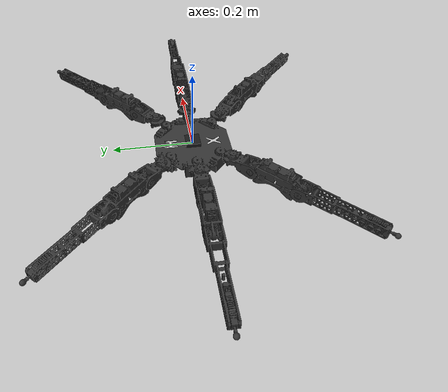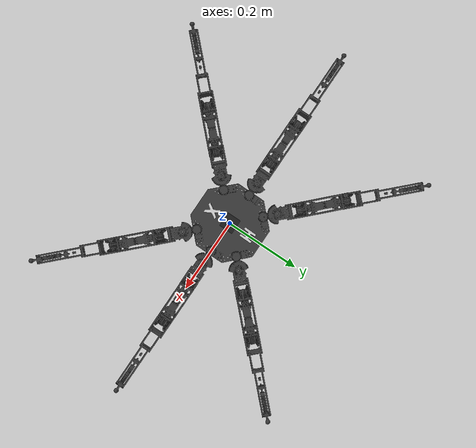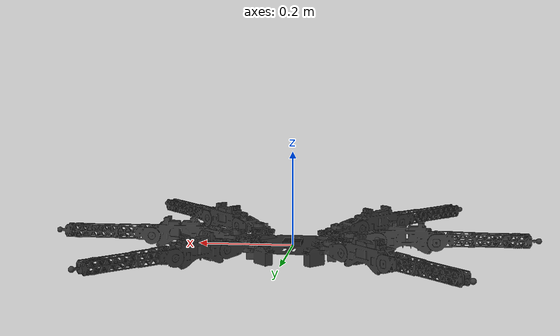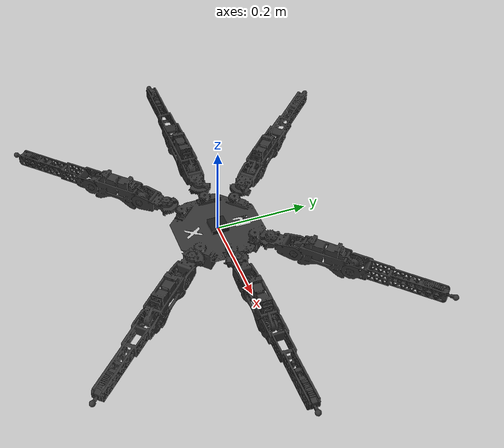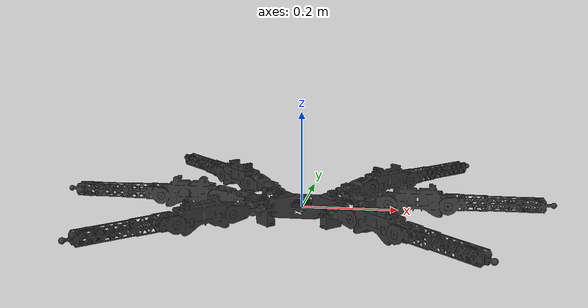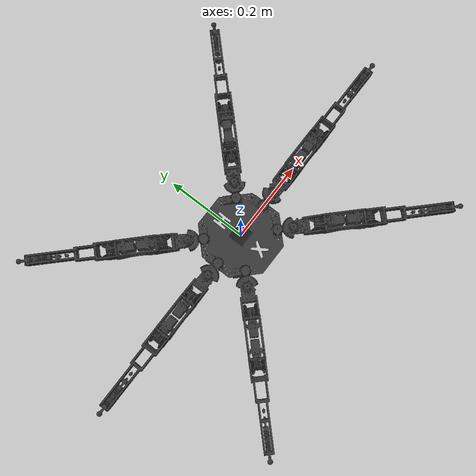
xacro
<?xml version="1.0"?>
<robot name="hexapod" xmlns:xacro="http://ros.org/wiki/xacro">
    <!-- Declare the argument with a default value -->
    <xacro:arg name="use_gazebo" default="true"/>
    <xacro:arg name="version" default="2"/>
    <xacro:property name="use_gazebo" value="$(arg use_gazebo)"/>
    <xacro:property name="version" value="$(arg version)"/>
    <xacro:include filename="$(find hexapod_description)/urdf/hexapod_ee.urdf.xacro" />

    <!-- Pass the argument value to the macro -->
    <xacro:hexapod_ee use_sim="true" prefix="" use_gazebo="$(arg use_gazebo)" version="$(arg version)"/>
</robot>

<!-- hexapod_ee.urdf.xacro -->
<robot name="hexapod" xmlns:xacro="http://ros.org/wiki/xacro">
  <xacro:macro name="hexapod_ee" params="use_sim prefix use_gazebo version">

    <xacro:include filename="$(find hexapod_description)/gazebo/hexapod.gazebo.xacro" />
    <xacro:include filename="$(find hexapod_description)/urdf/hexapod_leg_ee.urdf.xacro" />
    <xacro:include filename="$(find hexapod_description)/urdf/hexapod_gazebo.urdf.xacro" />
    <xacro:include filename="$(find hexapod_description)/urdf/imu.urdf.xacro"/>
    <xacro:include filename="$(find hexapod_moveit_config)/config/hexapod.ros2_control.xacro" />

    <xacro:hexapod_leg_ee prefix="${prefix}" version="${version}"/>
    <xacro:hexapod_gazebo prefix="${prefix}" />

    <xacro:imu_sensor
    prefix="${prefix}"
    parent="${prefix}base_link"
    frame_id="imu"
    xyz_offset="0 0 0.006"
    rpy_offset="0 0 0"
    update_rate="15.0"
    topic_name="imu/data"/>

    <gazebo>
      <plugin filename="gz_ros2_control-system" name="gz_ros2_control::GazeboSimROS2ControlPlugin">
        <parameters>$(find hex_gz)/config/gazebo_controller_manager.yaml</parameters>
      </plugin>
    </gazebo>

    <gazebo reference="imu">
      <sensor name="imu_sensor" type="imu">
        <update_rate>100.0</update_rate>
        <always_on>true</always_on>
        <visualize>true</visualize>
        <topic>imu/data</topic>
        <imu>
          <topic>imu/data</topic>
          <gaussian_noise>0.01</gaussian_noise>
          <bias_mean>0.0</bias_mean>
          <bias_stddev>0.0</bias_stddev>
        </imu>
      </sensor>
    </gazebo>

    <xacro:hexapod_ros2_control name="hexapod" initial_positions_file="$(find hexapod_description)/config/initial_positions.yaml" use_gazebo="${use_gazebo}"/>
  </xacro:macro>
</robot>

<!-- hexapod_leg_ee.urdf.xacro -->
<robot xmlns:xacro="http://www.ros.org/wiki/xacro">
  <xacro:macro name="hexapod_leg_ee" params="prefix version">
    <xacro:if value="${int(version) == 1}">
      <!-- CECHY INERCJI -->
      <xacro:property name="platform_mass" value="0.3" />
      <xacro:property name="up_section_mass" value="0.1" />
      <xacro:property name="mid_section_mass" value="0.1" />
      <xacro:property name="down_section_mass" value="0.1" />
      <xacro:property name="ixx" value="0.001"/>
      <xacro:property name="iyy" value="0.001"/>
      <xacro:property name="izz" value="0.001"/>

      <!-- OGRANICZENIA KĄTOWE JOINTÓW -->
      <xacro:property name="joint1_lower" value="-0.5236"/>
      <xacro:property name="joint1_upper" value="0.5236"/>
      <xacro:property name="joint2_lower" value="-0.261799388"/>
      <xacro:property name="joint2_upper" value="1.308996939"/>
      <xacro:property name="joint3_lower" value="0"/>
      <xacro:property name="joint3_upper" value="1.570796327"/>

      <!-- CECHY POŁOŻENIA STAWÓW LEG 1 -->
      <xacro:property name="joint1_1_xyz" value="-0.063746 0.067285 0.003274"/>
      <xacro:property name="joint1_1_axis" value="0 0 1"/>

      <xacro:property name="joint2_1_xyz" value="-0.018864 0.024671 -0.020002"/>
      <xacro:property name="joint2_1_axis" value="-0.7968540982 -0.6041717854 0"/>

      <xacro:property name="joint3_1_xyz" value="-0.054636 0.071451 0.00505"/>
      <xacro:property name="joint3_1_axis" value="-0.7968540982 -0.6041717854 0"/>

      <xacro:property name="joint4_1_xyz" value="-0.099587 0.130461 -0.000046"/>
      <xacro:property name="joint4_1_axis" value="0 0 0"/>

      <!-- CECHY POŁOŻENIA LINKÓW LEG 1 -->
      <xacro:property name="link2_1_xyz" value="-0.013611 0.016988 -0.000419"/>
      <xacro:property name="link2_1_rpy" value="0 0 0.654498469"/>
      <xacro:property name="link3_1_xyz" value="-0.024936 0.032658 0.000547"/>
      <xacro:property name="link3_1_rpy" value="0 0 0.654498469"/>
      <xacro:property name="link4_1_xyz" value="-0.039176 0.05167 0"/>
      <xacro:property name="link4_1_rpy" value="0 0 0.654498469"/>

      <!-- CECHY POŁOŻENIA STAWÓW LEG 2 -->
      <xacro:property name="joint1_2_xyz" value="-0.005442 0.097816 0.003274"/>
      <xacro:property name="joint1_2_axis" value="0 0 1"/>

      <xacro:property name="joint2_2_xyz" value="0.0 0.031057 -0.020002"/>
      <xacro:property name="joint2_2_axis" value="-1 0 0"/>

      <xacro:property name="joint3_2_xyz" value="0.0 0.089946 0.00505"/>
      <xacro:property name="joint3_2_axis" value="-1 0 0"/>

      <xacro:property name="joint4_2_xyz" value="0.000147 0.164223 -0.000046"/>
      <xacro:property name="joint4_2_axis" value="0 0 0"/>

      <!-- CECHY POŁOŻENIA LINKÓW LEG 2 -->
      <xacro:property name="link2_2_xyz" value="-0.000493 0.021762 -0.000419"/>
      <xacro:property name="link2_2_rpy" value="0 0 0"/>
      <xacro:property name="link3_2_xyz" value="0.0 0.041 0.000546"/>
      <xacro:property name="link3_2_rpy" value="0 0 0"/>
      <xacro:property name="link4_2_xyz" value="0.000265 0.064842 0.0"/>
      <xacro:property name="link4_2_rpy" value="0 0 0"/>

      <!-- CECHY POŁOŻENIA STAWÓW LEG 3 -->
      <xacro:property name="joint1_3_xyz" value="0.055103 0.073938 0.003274"/>
      <xacro:property name="joint1_3_axis" value="0 0 1"/>

      <xacro:property name="joint2_3_xyz" value="0.018864 0.024671 -0.020002"/>
      <xacro:property name="joint2_3_axis" value="-0.794374 0.6074290528 0"/>

      <xacro:property name="joint3_3_xyz" value="0.054636 0.071451 0.00505"/>
      <xacro:property name="joint3_3_axis" value="-0.794374 0.6074290528 0"/>

      <xacro:property name="joint4_3_xyz" value="0.099252 0.130694 -0.000046"/>
      <xacro:property name="joint4_3_axis" value="0 0 0"/>

      <!-- CECHY POŁOŻENIA LINKÓW LEG 3 -->
      <xacro:property name="link2_3_xyz" value="0.012827 0.017587 -0.000419"/>
      <xacro:property name="link2_3_rpy" value="0 0 -0.654498469"/>
      <xacro:property name="link3_3_xyz" value="0.024936 0.032658 0.000547"/>
      <xacro:property name="link3_3_rpy" value="0 0 -0.654498469"/>
      <xacro:property name="link4_3_xyz" value="0.039176 0.05167 0"/>
      <xacro:property name="link4_3_rpy" value="0 0 -0.654498469"/>

      <!-- CECHY POŁOŻENIA STAWÓW LEG 4 -->
      <xacro:property name="joint1_4_xyz" value="0.055103 -0.073938 0.003274"/>
      <xacro:property name="joint1_4_axis" value="0 0 1"/>

      <xacro:property name="joint2_4_xyz" value="0.018864 -0.024671 -0.020002"/>
      <xacro:property name="joint2_4_axis" value="0.6074290528 0.794374 0"/>

      <xacro:property name="joint3_4_xyz" value="0.054636 -0.071451 0.00505"/>
      <xacro:property name="joint3_4_axis" value="0.794374 0.6074290528 0"/>

      <xacro:property name="joint4_4_xyz" value="0.099758 -0.130448 -0.000046"/>
      <xacro:property name="joint4_4_axis" value="0 0 0"/>

      <!-- CECHY POŁOŻENIA LINKÓW LEG 4 -->
      <xacro:property name="link2_4_xyz" value="0.013611 -0.016988 -0.000419"/>
      <xacro:property name="link2_4_rpy" value="0 0 3.796091123"/>
      <xacro:property name="link3_4_xyz" value="0.024936 -0.032658 0.000547"/>
      <xacro:property name="link3_4_rpy" value="0 0 3.796091123"/>
      <xacro:property name="link4_4_xyz" value="0.039176 -0.05167 0"/>
      <xacro:property name="link4_4_rpy" value="0 0 3.796091123"/>

      <!-- CECHY POŁOŻENIA STAWÓW LEG 5 -->
      <xacro:property name="joint1_5_xyz" value="-0.005442 -0.097816 0.003274"/>
      <xacro:property name="joint1_5_axis" value="0 0 1"/>

      <xacro:property name="joint2_5_xyz" value="0.0 -0.031057 -0.020002"/>
      <xacro:property name="joint2_5_axis" value="1 0 0"/>

      <xacro:property name="joint3_5_xyz" value="0.0 -0.089946 0.00505"/>
      <xacro:property name="joint3_5_axis" value="1 0 0"/>

      <xacro:property name="joint4_5_xyz" value="-0.000051 -0.164207 -0.000046"/>
      <xacro:property name="joint4_5_axis" value="0 0 0"/>

      <!-- CECHY POŁOŻENIA LINKÓW LEG 5 -->
      <xacro:property name="link2_5_xyz" value="0.000493 -0.021762 -0.000419"/>
      <xacro:property name="link2_5_rpy" value="0 0 3.141592654"/>
      <xacro:property name="link3_5_xyz" value="0.0 -0.041 0.000546"/>
      <xacro:property name="link3_5_rpy" value="0 0 3.141592654"/>
      <xacro:property name="link4_5_xyz" value="-0.000265 -0.064842 0.0"/>
      <xacro:property name="link4_5_rpy" value="0 0 3.141592654"/>

      <!-- CECHY POŁOŻENIA STAWÓW LEG 6 -->
      <xacro:property name="joint1_6_xyz" value="-0.063746 -0.067285 0.003274"/>
      <xacro:property name="joint1_6_axis" value="0 0 1"/>

      <xacro:property name="joint2_6_xyz" value="-0.018864 -0.024671 -0.020002"/>
      <xacro:property name="joint2_6_axis" value="0.794374 -0.6074290528 0"/>

      <xacro:property name="joint3_6_xyz" value="-0.054636 -0.071451 0.00505"/>
      <xacro:property name="joint3_6_axis" value="0.794374 -0.6074290528 0"/>

      <xacro:property name="joint4_6_xyz" value="-0.099223 -0.130739 -0.000046"/>
      <xacro:property name="joint4_6_axis" value="0 0 0"/>

      <!-- CECHY POŁOŻENIA LINKÓW LEG 6 -->
      <xacro:property name="link2_6_xyz" value="-0.012827 -0.017588 -0.000419"/>
      <xacro:property name="link2_6_rpy" value="0 0 2.487094184"/>
      <xacro:property name="link3_6_xyz" value="-0.024936 -0.032658 0.000547"/>
      <xacro:property name="link3_6_rpy" value="0 0 2.487094184"/>
      <xacro:property name="link4_6_xyz" value="-0.039176 -0.05167 0"/>
      <xacro:property name="link4_6_rpy" value="0 0 2.487094184"/>

    </xacro:if>

    <!-- DLA NOWEJ WERSJI HEXAPODA ZMIENIĆ PONIŻSZE PARAMETRY -->
    <xacro:if value="${int(version) == 2}">
      <!-- CECHY INERCJI -->
      <xacro:property name="platform_mass" value="0.4" />
      <xacro:property name="up_section_mass" value="0.12" />
      <xacro:property name="mid_section_mass" value="0.12" />
      <xacro:property name="down_section_mass" value="0.12" />
      <xacro:property name="ixx" value="0.002"/>
      <xacro:property name="iyy" value="0.002"/>
      <xacro:property name="izz" value="0.002"/>

      <!-- OGRANICZENIA KĄTOWE JOINTÓW -->
      <xacro:property name="joint1_lower" value="-0.785398163"/>
      <xacro:property name="joint1_upper" value="0.785398163"/>
      <xacro:property name="joint2_lower" value="-1.047197551"/>
      <xacro:property name="joint2_upper" value="1.047197551"/>
      <xacro:property name="joint3_lower" value="-0.523598776"/>
      <xacro:property name="joint3_upper" value="1.570796327"/>

      <!-- CECHY POŁOŻENIA STAWÓW LEG 1 -->
      <xacro:property name="joint1_1_xyz" value="0.086185	0.0860902	0.0170504"/>
      <xacro:property name="joint1_1_axis" value="0	0	1"/>

      <xacro:property name="joint2_1_xyz" value="0.041059	0.0410588	0.0002496"/>
      <xacro:property name="joint2_1_axis" value="-0.707106781	0.707106781	0"/>

      <xacro:property name="joint3_1_xyz" value="0.085418	0.085419	0"/>
      <xacro:property name="joint3_1_axis" value="-0.707106781	0.707106781	0"/>

      <xacro:property name="joint4_1_xyz" value="0.147786	0.147786	0.0048551"/>
      <xacro:property name="joint4_1_axis" value="0	0	0"/>

      <!-- CECHY POŁOŻENIA LINKÓW LEG 1 -->
      <xacro:property name="link2_1_xyz" value="0.003017	0.0026184	-0.0000519"/>
      <xacro:property name="link2_1_rpy" value="0	0	0.7853981634"/>
      <xacro:property name="link3_1_xyz" value="0.039867	0.039421	0.00014"/>
      <xacro:property name="link3_1_rpy" value="0	0	0.7853981634"/>
      <xacro:property name="link4_1_xyz" value="0.082477	0.082555	0.0045585"/>
      <xacro:property name="link4_1_rpy" value="0	0	0.7853981634"/>
      <xacro:property name="link5_1_xyz" value="0	0	0"/>
      <xacro:property name="link5_1_rpy" value="0	0	0"/>

      <!-- CECHY POŁOŻENIA STAWÓW LEG 2 -->
      <xacro:property name="joint1_2_xyz" value="0.121845	0	0.0170504"/>
      <xacro:property name="joint1_2_axis" value="0	0	1"/>

      <xacro:property name="joint2_2_xyz" value="0.058105	-0.000094711	0.0002496"/>
      <xacro:property name="joint2_2_axis" value="0	1	0"/>

      <xacro:property name="joint3_2_xyz" value="0.120802	0.000000002	0"/>
      <xacro:property name="joint3_2_axis" value="0	1	0"/>

      <xacro:property name="joint4_2_xyz" value="0.209002	-0.000000003	0.0048551"/>
      <xacro:property name="joint4_2_axis" value="0	0	0"/>

      <!-- CECHY POŁOŻENIA LINKÓW LEG 2 -->
      <xacro:property name="link2_2_xyz" value="0.003944	-0.000340488	-0.0000519"/>
      <xacro:property name="link2_2_rpy" value="0	0	0"/>
      <xacro:property name="link3_2_xyz" value="0.055988	-0.000035124	0.0001789"/>
      <xacro:property name="link3_2_rpy" value="0	0	0"/>
      <xacro:property name="link4_2_xyz" value="0.116837	0.000195559	0.0045585"/>
      <xacro:property name="link4_2_rpy" value="0	0	0"/>
      <xacro:property name="link5_2_xyz" value="0	0	0"/>
      <xacro:property name="link5_2_rpy" value="0	0	0"/>

      <!-- CECHY POŁOŻENIA STAWÓW LEG 3 -->
      <xacro:property name="joint1_3_xyz" value="0.0861847	-0.0860902	0.0170504"/>
      <xacro:property name="joint1_3_axis" value="0	0	1"/>

      <xacro:property name="joint2_3_xyz" value="0.0410583	-0.0412488	0.0002496"/>
      <xacro:property name="joint2_3_axis" value="0.707106781	0.707106781	0"/>

      <xacro:property name="joint3_3_xyz" value="0.08542	-0.085418	0"/>
      <xacro:property name="joint3_3_axis" value="0.707106781	0.707106781	0"/>

      <xacro:property name="joint4_3_xyz" value="0.147785	-0.147785	0.0048551"/>
      <xacro:property name="joint4_3_axis" value="0	0	0"/>

      <!-- CECHY POŁOŻENIA LINKÓW LEG 3 -->
      <xacro:property name="link2_3_xyz" value="0.0029399	-0.002591	-0.0000519"/>
      <xacro:property name="link2_3_rpy" value="0	0	5.497787144"/>
      <xacro:property name="link3_3_xyz" value="0.03928	-0.039511	0.00014"/>
      <xacro:property name="link3_3_rpy" value="0	0	5.497787144"/>
      <xacro:property name="link4_3_xyz" value="0.082476	-0.082624	0.0045585"/>
      <xacro:property name="link4_3_rpy" value="0	0	5.497787144"/>
      <xacro:property name="link5_3_xyz" value="0	0	0"/>
      <xacro:property name="link5_3_rpy" value="0	0	0"/>

      <!-- CECHY POŁOŻENIA STAWÓW LEG 4 -->
      <xacro:property name="joint1_4_xyz" value="-0.0861847	-0.0860902	0.0170504"/>
      <xacro:property name="joint1_4_axis" value="0	0	1"/>

      <xacro:property name="joint2_4_xyz" value="-0.0410583	-0.0412488	0.0002496"/>
      <xacro:property name="joint2_4_axis" value="0.707106781	-0.707106781	0"/>

      <xacro:property name="joint3_4_xyz" value="-0.08542	-0.085418	0"/>
      <xacro:property name="joint3_4_axis" value="0.707106781	-0.707106781	0"/>

      <xacro:property name="joint4_4_xyz" value="-0.147785	-0.147785	0.0048551"/>
      <xacro:property name="joint4_4_axis" value="0	0	0"/>

      <!-- CECHY POŁOŻENIA LINKÓW LEG 4 -->
      <xacro:property name="link2_4_xyz" value="-0.0029399	-0.002591	-0.0000519"/>
      <xacro:property name="link2_4_rpy" value="0	0	3.926990817"/>
      <xacro:property name="link3_4_xyz" value="-0.03928	-0.039511	0.00014"/>
      <xacro:property name="link3_4_rpy" value="0	0	3.926990817"/>
      <xacro:property name="link4_4_xyz" value="-0.082476	-0.082624	0.0045585"/>
      <xacro:property name="link4_4_rpy" value="0	0	3.926990817"/>
      <xacro:property name="link5_4_xyz" value="0	0	0"/>
      <xacro:property name="link5_4_rpy" value="0	0	0"/>

      <!-- CECHY POŁOŻENIA STAWÓW LEG 5 -->
      <xacro:property name="joint1_5_xyz" value="-0.121845	0	0.0170504"/>
      <xacro:property name="joint1_5_axis" value="0	0	1"/>

      <xacro:property name="joint2_5_xyz" value="-0.058105	-0.000094711	0.0002496"/>
      <xacro:property name="joint2_5_axis" value="0	-1	0"/>

      <xacro:property name="joint3_5_xyz" value="-0.120802	0.000000002	0"/>
      <xacro:property name="joint3_5_axis" value="0	-1	0"/>

      <xacro:property name="joint4_5_xyz" value="-0.209002	-0.000000003	0.0048551"/>
      <xacro:property name="joint4_5_axis" value="0	0	0"/>

      <!-- CECHY POŁOŻENIA LINKÓW LEG 5 -->
      <xacro:property name="link2_5_xyz" value="-0.003953	-0.000340488	-0.0000519"/>
      <xacro:property name="link2_5_rpy" value="0	0	3.141592654"/>
      <xacro:property name="link3_5_xyz" value="-0.055988	-0.000035124	0.0001789"/>
      <xacro:property name="link3_5_rpy" value="0	0	3.141592654"/>
      <xacro:property name="link4_5_xyz" value="-0.116837	0.000195559	0.0045585"/>
      <xacro:property name="link4_5_rpy" value="0	0	3.141592654"/>
      <xacro:property name="link5_5_xyz" value="0	0	0"/>
      <xacro:property name="link5_5_rpy" value="0	0	0"/>

      <!-- CECHY POŁOŻENIA STAWÓW LEG 6 -->
      <xacro:property name="joint1_6_xyz" value="-0.0859957	0.0860903	0.0170505"/>
      <xacro:property name="joint1_6_axis" value="0	0	1"/>

      <xacro:property name="joint2_6_xyz" value="-0.0412483	0.0410587	0.0002494"/>
      <xacro:property name="joint2_6_axis" value="-0.707106781	-0.707106781	0"/>

      <xacro:property name="joint3_6_xyz" value="-0.08542	0.085419	0.0000001"/>
      <xacro:property name="joint3_6_axis" value="-0.707106781	-0.707106781	0"/>

      <xacro:property name="joint4_6_xyz" value="-0.147786	0.147785	0.0048551"/>
      <xacro:property name="joint4_6_axis" value="0	0	0"/>

      <!-- CECHY POŁOŻENIA LINKÓW LEG 6 -->
      <xacro:property name="link2_6_xyz" value="-0.0029399	0.002591	-0.0000519"/>
      <xacro:property name="link2_6_rpy" value="0	0	2.35619449"/>
      <xacro:property name="link3_6_xyz" value="-0.03928	0.039511	0.00014"/>
      <xacro:property name="link3_6_rpy" value="0	0	2.364921136"/>
      <xacro:property name="link4_6_xyz" value="-0.082476	0.082624	0.0045585"/>
      <xacro:property name="link4_6_rpy" value="0	0	2.35619449"/>
      <xacro:property name="link5_6_xyz" value="0	0	0"/>
      <xacro:property name="link5_6_rpy" value="0	0	0"/>

    </xacro:if>

    <xacro:property
        name="meshes_file_direction"
        value="package://hexapod_description/meshes/Version${version}"/>

    <!-- Include macro modeli kolizyjnych z prostych kształtów geometrycznych -->
     <xacro:if value="${int(version) == 1}">
      <xacro:include filename="$(find hexapod_description)/collision/platform_hitbox.xacro"/>
      <xacro:include filename="$(find hexapod_description)/collision/up_section_hitbox.xacro"/>
      <xacro:include filename="$(find hexapod_description)/collision/mid_section_hitbox.xacro"/>
      <xacro:include filename="$(find hexapod_description)/collision/down_section_hitbox.xacro"/>
    </xacro:if>

    <!-- NA RAZIE BRAK PROSTYCH MODELI KOLIZJI -->
    <xacro:if value="${int(version) == 2}">
    </xacro:if>

    <!-- Macro platformy -->
      <xacro:macro name="platform_base" params="prefix">
        <link name="${prefix}base_link">
          <visual>
            <origin xyz="0 0 0" rpy="0 0 0"/>
            <geometry>
              <mesh filename="${meshes_file_direction}/platform.stl" scale="1 1 1"/>
            </geometry>
            <material name="gray">
              <color rgba="0.2 0.2 0.2 1"/>
            </material>
          </visual>

          <!-- MODEL KOLIZYJNY -->
          <xacro:if value="${int(version) == 1}">
            <xacro:platform_collision prefix="${prefix}" />
          </xacro:if>
           <xacro:if value="${int(version) == 2}">
            <collision>
                <origin xyz="0 0 0" rpy="0 0 0"/>
                <geometry>
                  <mesh filename="${meshes_file_direction}/platform.stl" scale="1 1 1"/>
                </geometry>
            </collision>
          </xacro:if>

          <inertial>
            <origin xyz="0 0 0" rpy="0 0 0"/>
            <mass value="${platform_mass}"/>
            <inertia
              ixx="${ixx}" ixy="0.0" ixz="0.0"
              iyy="${iyy}" iyz="0.0"
              izz="${izz}"/>
          </inertial>
        </link>
      </xacro:macro>

    <!-- Macro: Joint -->
    <xacro:macro name="leg_joint" params="prefix joint_name parent_link child_link xyz axis lower upper">
      <joint name="${joint_name}" type="revolute">
        <parent link="${parent_link}"/>
        <child link="${child_link}"/>
        <origin xyz="${xyz}" rpy="0 0 0"/>
        <axis xyz="${axis}"/>
        <limit effort="5.0" velocity="1.0" lower="${lower}" upper="${upper}"/>
        <dynamics damping="0.1"/>
      </joint>
    </xacro:macro>

    <!-- Macro: UP_SECTION -->
    <xacro:macro name="upper_leg" params="prefix index xyz rpy">
      <link name="${prefix}link2_${index}">
        <visual>
          <origin xyz="${xyz}" rpy="${rpy}"/>
          <geometry>
            <mesh filename="${meshes_file_direction}/leg_up.stl" scale="1.0 1.0 1.0"/>
          </geometry>
          <material name="grey">
            <color rgba="0.2 0.2 0.2 1"/>
          </material>
        </visual>

        <!-- MODEL KOLIZYJNY -->
          <xacro:if value="${int(version) == 1}">
            <xacro:upper_leg_collision prefix="${prefix}" position="${xyz}" rotation="${rpy}"/>
          </xacro:if>
           <xacro:if value="${int(version) == 2}">
            <collision>
                <origin xyz="${xyz}" rpy="${rpy}"/>
                <geometry>
                  <mesh filename="${meshes_file_direction}/leg_up.stl" scale="1 1 1"/>
                </geometry>
            </collision>
          </xacro:if>

        <inertial>
          <origin xyz="${xyz}" rpy="0.0 0.0 0.0"/>
          <mass value="${up_section_mass}"/>
          <inertia ixx="${ixx}" ixy="0.0" ixz="0.0" iyy="${iyy}" iyz="0.0" izz="${izz}"/>
        </inertial>
      </link>
    </xacro:macro>

    <!-- Macro: MID_SECTION -->
    <xacro:macro name="mid_leg" params="prefix index xyz rpy">
      <link name="${prefix}link3_${index}">
        <visual>
          <origin xyz="${xyz}" rpy="${rpy}"/>
          <geometry>
            <mesh filename="${meshes_file_direction}/leg_mid.stl" scale="1.0 1.0 1.0"/>
          </geometry>
          <material name="grey">
            <color rgba="0.2 0.2 0.2 1"/>
          </material>
        </visual>
          <xacro:if value="${int(version) == 1}">
            <xacro:mid_leg_collision prefix="${prefix}" position="${xyz}" rotation="${rpy}"/>
          </xacro:if>
           <xacro:if value="${int(version) == 2}">
            <collision>
                <origin xyz="${xyz}" rpy="${rpy}"/>
                <geometry>
                  <mesh filename="${meshes_file_direction}/leg_mid.stl" scale="1 1 1"/>
                </geometry>
            </collision>
          </xacro:if>

        <inertial>
          <origin xyz="${xyz}" rpy="${rpy}"/>
          <mass value="${mid_section_mass}"/>
          <inertia ixx="${ixx}" ixy="0.0" ixz="0.0" iyy="${iyy}" iyz="0.0" izz="${izz}"/>
        </inertial>
      </link>
    </xacro:macro>

    <!-- Macro: DOWN_SECTION -->
    <xacro:macro name="lower_leg" params="prefix index xyz rpy">
      <link name="${prefix}link4_${index}">
        <visual>
          <origin xyz="${xyz}" rpy="${rpy}"/>
          <geometry>
            <mesh filename="${meshes_file_direction}/leg_down.stl" scale="1.0 1.0 1.0"/>
          </geometry>
          <material name="grey">
            <color rgba="0.2 0.2 0.2 1"/>
          </material>
        </visual>

          <xacro:if value="${int(version) == 1}">
            <xacro:lower_leg_collision prefix="${prefix}" position="${xyz}" rotation="${rpy}"/>
          </xacro:if>
           <xacro:if value="${int(version) == 2}">
            <collision>
                <origin xyz="${xyz}" rpy="${rpy}"/>
                <geometry>
                  <mesh filename="${meshes_file_direction}/leg_down.stl" scale="1 1 1"/>
                </geometry>
            </collision>
          </xacro:if>

        <inertial>
          <origin xyz="${xyz}" rpy="${rpy}"/>
          <mass value="${down_section_mass}"/>
          <inertia ixx="${ixx}" ixy="0.0" ixz="0.0" iyy="${iyy}" iyz="0.0" izz="${izz}"/>
        </inertial>
      </link>
    </xacro:macro>

  <!-- Macro: Effector Joint -->
  <xacro:macro name="end_effector_joint" params="prefix index xyz rpy">
    <joint name="${prefix}joint4_${index}" type="fixed">
      <parent link="${prefix}link4_${index}"/>
      <child link="${prefix}link5_${index}"/>
      <origin xyz="${xyz}" rpy="${rpy}"/>
    </joint>
  </xacro:macro>

  <!-- Macro: Effector -->
  <xacro:macro name="end_effector_link" params="prefix index">
    <link name="${prefix}link5_${index}"/>
  </xacro:macro>

  <xacro:macro name="hexapod" params="prefix version">
      <!-- Platform -->
    <xacro:platform_base prefix="${prefix}" />

    <!-- LEG 1 - używa zmiennych zamiast wartości na twardo -->
    <xacro:leg_joint
      prefix="${prefix}"
      joint_name="${prefix}joint1_1"
      parent_link="${prefix}base_link"
      child_link="${prefix}link2_1"
      xyz="${joint1_1_xyz}"
      axis="${joint1_1_axis}"
      lower="${joint1_lower}"
      upper="${joint1_upper}" />
    <xacro:upper_leg prefix="${prefix}" index="1" xyz="${link2_1_xyz}" rpy="${link2_1_rpy}" />

    <xacro:leg_joint
      prefix="${prefix}"
      joint_name="${prefix}joint2_1"
      parent_link="${prefix}link2_1"
      child_link="${prefix}link3_1"
      xyz="${joint2_1_xyz}"
      axis="${joint2_1_axis}"
      lower="${joint2_lower}"
      upper="${joint2_upper}" />
    <xacro:mid_leg prefix="${prefix}" index="1" xyz="${link3_1_xyz}" rpy="${link3_1_rpy}" />

    <xacro:leg_joint
      prefix="${prefix}"
      joint_name="${prefix}joint3_1"
      parent_link="${prefix}link3_1"
      child_link="${prefix}link4_1"
      xyz="${joint3_1_xyz}"
      axis="${joint3_1_axis}"
      lower="${joint3_lower}"
      upper="${joint3_upper}" />
    <xacro:lower_leg prefix="${prefix}" index="1" xyz="${link4_1_xyz}" rpy="${link4_1_rpy}" />

    <xacro:end_effector_joint prefix="${prefix}" index="1" xyz="${joint4_1_xyz}" rpy="${joint4_1_axis}"/>
    <xacro:end_effector_link prefix="${prefix}" index="1"/>

    <!-- LEG 2 - używa zmiennych zamiast wartości na twardo -->
    <xacro:leg_joint
      prefix="${prefix}"
      joint_name="${prefix}joint1_2"
      parent_link="${prefix}base_link"
      child_link="${prefix}link2_2"
      xyz="${joint1_2_xyz}"
      axis="${joint1_2_axis}"
      lower="${joint1_lower}"
      upper="${joint1_upper}"/>
    <xacro:upper_leg prefix="${prefix}" index="2" xyz="${link2_2_xyz}" rpy="${link2_2_rpy}"/>

    <xacro:leg_joint
      prefix="${prefix}"
      joint_name="${prefix}joint2_2"
      parent_link="${prefix}link2_2"
      child_link="${prefix}link3_2"
      xyz="${joint2_2_xyz}"
      axis="${joint2_2_axis}"
      lower="${joint2_lower}"
      upper="${joint2_upper}"/>
    <xacro:mid_leg prefix="${prefix}" index="2" xyz="${link3_2_xyz}" rpy="${link3_2_rpy}"/>

    <xacro:leg_joint
      prefix="${prefix}"
      joint_name="${prefix}joint3_2"
      parent_link="${prefix}link3_2"
      child_link="${prefix}link4_2"
      xyz="${joint3_2_xyz}"
      axis="${joint3_2_axis}"
      lower="${joint3_lower}"
      upper="${joint3_upper}"/>
    <xacro:lower_leg prefix="${prefix}" index="2" xyz="${link4_2_xyz}" rpy="${link4_2_rpy}"/>

    <xacro:end_effector_joint prefix="${prefix}" index="2" xyz="${joint4_2_xyz}" rpy="${joint4_2_axis}"/>
    <xacro:end_effector_link prefix="${prefix}" index="2"/>

    <!-- LEG 3 - używa zmiennych zamiast wartości na twardo -->
    <xacro:leg_joint
      prefix="${prefix}"
      joint_name="${prefix}joint1_3"
      parent_link="${prefix}base_link"
      child_link="${prefix}link2_3"
      xyz="${joint1_3_xyz}"
      axis="${joint1_3_axis}"
      lower="${joint1_lower}"
      upper="${joint1_upper}"/>
    <xacro:upper_leg prefix="${prefix}" index="3" xyz="${link2_3_xyz}" rpy="${link2_3_rpy}"/>

    <xacro:leg_joint
      prefix="${prefix}"
      joint_name="${prefix}joint2_3"
      parent_link="${prefix}link2_3"
      child_link="${prefix}link3_3"
      xyz="${joint2_3_xyz}"
      axis="${joint2_3_axis}"
      lower="${joint2_lower}"
      upper="${joint2_upper}"/>
    <xacro:mid_leg prefix="${prefix}" index="3" xyz="${link3_3_xyz}" rpy="${link3_3_rpy}"/>

    <xacro:leg_joint
      prefix="${prefix}"
      joint_name="${prefix}joint3_3"
      parent_link="${prefix}link3_3"
      child_link="${prefix}link4_3"
      xyz="${joint3_3_xyz}"
      axis="${joint3_3_axis}"
      lower="${joint3_lower}"
      upper="${joint3_upper}"/>
    <xacro:lower_leg prefix="${prefix}" index="3" xyz="${link4_3_xyz}" rpy="${link4_3_rpy}"/>

    <xacro:end_effector_joint prefix="${prefix}" index="3" xyz="${joint4_3_xyz}" rpy="${joint4_3_axis}"/>
    <xacro:end_effector_link prefix="${prefix}" index="3"/>

    <!-- LEG 4 - używa zmiennych zamiast wartości na twardo -->
    <xacro:leg_joint
      prefix="${prefix}"
      joint_name="${prefix}joint1_4"
      parent_link="${prefix}base_link"
      child_link="${prefix}link2_4"
      xyz="${joint1_4_xyz}"
      axis="${joint1_4_axis}"
      lower="${joint1_lower}"
      upper="${joint1_upper}"/>
    <xacro:upper_leg prefix="${prefix}" index="4" xyz="${link2_4_xyz}" rpy="${link2_4_rpy}"/>

    <xacro:leg_joint
      prefix="${prefix}"
      joint_name="${prefix}joint2_4"
      parent_link="${prefix}link2_4"
      child_link="${prefix}link3_4"
      xyz="${joint2_4_xyz}"
      axis="${joint2_4_axis}"
      lower="${joint2_lower}"
      upper="${joint2_upper}"/>
    <xacro:mid_leg prefix="${prefix}" index="4" xyz="${link3_4_xyz}" rpy="${link3_4_rpy}"/>

    <xacro:leg_joint
      prefix="${prefix}"
      joint_name="${prefix}joint3_4"
      parent_link="${prefix}link3_4"
      child_link="${prefix}link4_4"
      xyz="${joint3_4_xyz}"
      axis="${joint3_4_axis}"
      lower="${joint3_lower}"
      upper="${joint3_upper}"/>
    <xacro:lower_leg prefix="${prefix}" index="4" xyz="${link4_4_xyz}" rpy="${link4_4_rpy}"/>

    <xacro:end_effector_joint prefix="${prefix}" index="4" xyz="${joint4_4_xyz}" rpy="${joint4_4_axis}"/>
    <xacro:end_effector_link prefix="${prefix}" index="4"/>

    <!-- LEG 5 - używa zmiennych zamiast wartości na twardo -->
    <xacro:leg_joint
      prefix="${prefix}"
      joint_name="${prefix}joint1_5"
      parent_link="${prefix}base_link"
      child_link="${prefix}link2_5"
      xyz="${joint1_5_xyz}"
      axis="${joint1_5_axis}"
      lower="${joint1_lower}"
      upper="${joint1_upper}"/>
    <xacro:upper_leg prefix="${prefix}" index="5" xyz="${link2_5_xyz}" rpy="${link2_5_rpy}"/>

    <xacro:leg_joint
      prefix="${prefix}"
      joint_name="${prefix}joint2_5"
      parent_link="${prefix}link2_5"
      child_link="${prefix}link3_5"
      xyz="${joint2_5_xyz}"
      axis="${joint2_5_axis}"
      lower="${joint2_lower}"
      upper="${joint2_upper}"/>
    <xacro:mid_leg prefix="${prefix}" index="5" xyz="${link3_5_xyz}" rpy="${link3_5_rpy}"/>

    <xacro:leg_joint
      prefix="${prefix}"
      joint_name="${prefix}joint3_5"
      parent_link="${prefix}link3_5"
      child_link="${prefix}link4_5"
      xyz="${joint3_5_xyz}"
      axis="${joint3_5_axis}"
      lower="${joint3_lower}"
      upper="${joint3_upper}"/>
    <xacro:lower_leg prefix="${prefix}" index="5" xyz="${link4_5_xyz}" rpy="${link4_5_rpy}"/>

    <xacro:end_effector_joint prefix="${prefix}" index="5" xyz="${joint4_5_xyz}" rpy="${joint4_5_axis}"/>
    <xacro:end_effector_link prefix="${prefix}" index="5"/>

    <!-- LEG 6 - używa zmiennych zamiast wartości na twardo -->
    <xacro:leg_joint
      prefix="${prefix}"
      joint_name="${prefix}joint1_6"
      parent_link="${prefix}base_link"
      child_link="${prefix}link2_6"
      xyz="${joint1_6_xyz}"
      axis="${joint1_6_axis}"
      lower="${joint1_lower}"
      upper="${joint1_upper}"/>
    <xacro:upper_leg prefix="${prefix}" index="6" xyz="${link2_6_xyz}" rpy="${link2_6_rpy}"/>

    <xacro:leg_joint
      prefix="${prefix}"
      joint_name="${prefix}joint2_6"
      parent_link="${prefix}link2_6"
      child_link="${prefix}link3_6"
      xyz="${joint2_6_xyz}"
      axis="${joint2_6_axis}"
      lower="${joint2_lower}"
      upper="${joint2_upper}"/>
    <xacro:mid_leg prefix="${prefix}" index="6" xyz="${link3_6_xyz}" rpy="${link3_6_rpy}"/>

    <xacro:leg_joint
      prefix="${prefix}"
      joint_name="${prefix}joint3_6"
      parent_link="${prefix}link3_6"
      child_link="${prefix}link4_6"
      xyz="${joint3_6_xyz}"
      axis="${joint3_6_axis}"
      lower="${joint3_lower}"
      upper="${joint3_upper}"/>
    <xacro:lower_leg prefix="${prefix}" index="6" xyz="${link4_6_xyz}" rpy="${link4_6_rpy}"/>

    <xacro:end_effector_joint prefix="${prefix}" index="6" xyz="${joint4_6_xyz}" rpy="${joint4_6_axis}"/>
    <xacro:end_effector_link prefix="${prefix}" index="6"/>

  </xacro:macro>

  <!-- Macro wywołujące hexapoda -->
  <xacro:hexapod prefix="${prefix}" version="${version}"/>

</xacro:macro>

</robot>

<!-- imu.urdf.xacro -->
<robot xmlns:xacro="http://www.ros.org/wiki/xacro">
    <xacro:property name="M_PI" value="3.1415926535897931" />
    <xacro:arg name="prefix" default=""/>
    <!-- imu jest ale nie wysyla nic -> do naprawy :( -->

    <xacro:macro name="imu_sensor" params="
        prefix:=''
        parent:='$(arg prefix)base_link'
        frame_id:='imu'
        xyz_offset:='0 0 0'
        rpy_offset:='0 0 0'
        inertial_xyz_offset:='0 0 0'
        inertial_rpy_offset:='0 0 0'
        mass:=0.031
        length:=0.03899
        width:=0.03785
        height:=0.01338
        material_name:='imu_black'
        material_color:='0.1 0.1 0.1 1'
        gazebo_material_ambient:='0.1 0.1 0.1 1'
        gazebo_material_diffuse:='0.1 0.1 0.1 1'
        gazebo_material_specular:='0.1 0.1 0.1 1'
        update_rate:='15.0'
        topic_name:='imu/data'
        always_on:=true
        visualize:=false">

        <xacro:property name="ixx" value="${(mass/12.0) * (height*height + width*width)}" />
        <xacro:property name="iyy" value="${(mass/12.0) * (length*length + height*height)}" />
        <xacro:property name="izz" value="${(mass/12.0) * (length*length + width*width)}" />

        <link name="${prefix}${frame_id}_link">
            <visual>
                <origin xyz="0 0 0" rpy="0 0 0"/>
                <geometry>
                    <box size="${length} ${width} ${height}"/>
                </geometry>
                <material name="${material_name}">
                    <color rgba="${material_color}"/>
                </material>
            </visual>

            <inertial>
                <mass value="${mass}" />
                <origin xyz="${inertial_xyz_offset}" rpy="${inertial_rpy_offset}"/>
                <inertia
                    ixx="${ixx}"
                    ixy="0.0"
                    ixz="0.0"
                    iyy="${iyy}"
                    iyz="0.0"
                    izz="${izz}" />
            </inertial>
        </link>

        <joint name="${prefix}${frame_id}_joint" type="fixed">
            <parent link="${prefix}${parent}"/>
            <child link="${prefix}${frame_id}_link" />
            <origin xyz="${xyz_offset}" rpy="${rpy_offset}"/>
        </joint>

        <gazebo reference="${prefix}${frame_id}_link">
            <material>
                <ambient>${gazebo_material_ambient}</ambient>
                <diffuse>${gazebo_material_diffuse}</diffuse>
                <specular>${gazebo_material_specular}</specular>
            </material>
            <sensor name="${prefix}imu_sensor" type="imu">
                <topic>${topic_name}</topic>
                <update_rate>${update_rate}</update_rate>
                <always_on>${always_on}</always_on>
                <visualize>${visualize}</visualize>
                <gz_frame_id>${prefix}${frame_id}_link</gz_frame_id>
            </sensor>
        </gazebo>
    </xacro:macro>
</robot>
